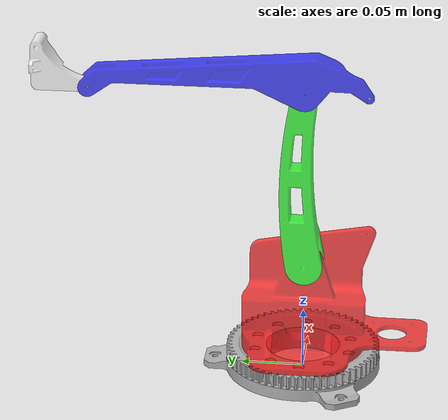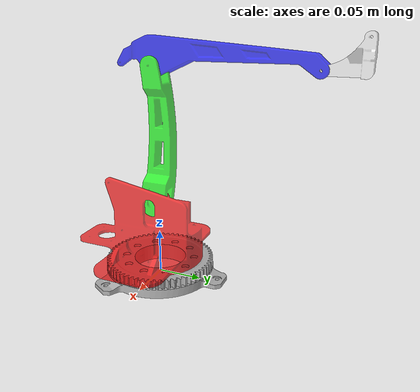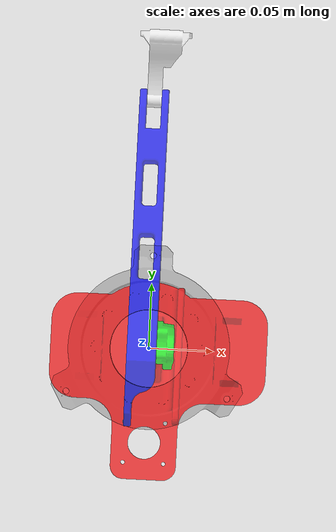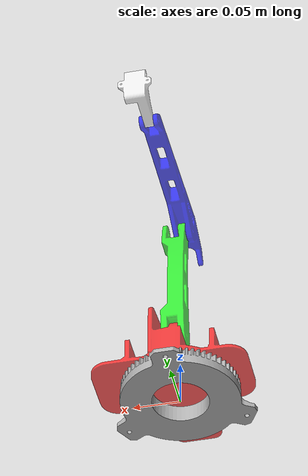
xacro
<?xml version="1.0" ?>
<robot name="zb320" xmlns:xacro="http://www.ros.org/wiki/xacro">

    <xacro:include filename="$(find zb320_description)/urdf/materials.xacro" />
    <xacro:include filename="$(find zb320_description)/urdf/model.trans" />
    <xacro:include filename="$(find zb320_description)/urdf/model.gazebo" />

    <link name="base_link">
        <inertial>
            <origin rpy="0 0 0" xyz="0.0 0.0 0.0"/>
            <mass value="1.4110802987401645"/>
            <inertia ixx="0.001793" ixy="0.0" ixz="0.0" iyy="0.001793" iyz="-0.0" izz="0.003498"/>
        </inertial>
        <visual>
            <origin rpy="0 0 3.14" xyz="0 0 0"/>
            <geometry>
                <mesh filename="package://zb320_description/meshes/base_link.stl" scale="0.001 0.001 0.001"/>
            </geometry>
            <material name="silver"/>
        </visual>
        <collision>
            <origin rpy="0 0 0" xyz="0 0 0"/>
            <geometry>
                <mesh filename="package://zb320_description/meshes/base_link.stl" scale="0.001 0.001 0.001"/>
            </geometry>
        </collision>
    </link>

    <link name="link_1_1">
        <inertial>
            <origin rpy="0 0 0" xyz="0.0 0.0 -0.02"/>
            <mass value="2.152080592427195"/>
            <inertia ixx="0.002479" ixy="-1.4e-05" ixz="0.000171" iyy="0.002425" iyz="-4e-06" izz="0.00328"/>
        </inertial>
        <visual>
            <origin rpy="0 0 3.14" xyz="-0.0 -0.0 -0.02"/>
            <geometry>
                <mesh filename="package://zb320_description/meshes/link_1_1.stl" scale="0.001 0.001 0.001"/>
            </geometry>
            <material name="red"/>
        </visual>
        <collision>
            <origin rpy="0 0 0" xyz="-0.0 -0.0 -0.02"/>
            <geometry>
                <mesh filename="package://zb320_description/meshes/link_1_1.stl" scale="0.001 0.001 0.001"/>
            </geometry>
        </collision>
    </link>

    <link name="link_2_1">
        <inertial>
            <origin rpy="0 0 0" xyz="0.0 0.0 -0.09"/>
            <mass value="0.48368669197035047"/>
            <inertia ixx="0.001168" ixy="1e-06" ixz="-7e-06" iyy="0.001158" iyz="1.1e-05" izz="5.8e-05"/>
        </inertial>
        <visual>
            <origin rpy="0 0 3.14" xyz="-0.0 -0.0 -0.09"/>
            <geometry>
                <mesh filename="package://zb320_description/meshes/link_2_1.stl" scale="0.001 0.001 0.001"/>
            </geometry>
            <material name="green"/>
        </visual>
        <collision>
            <origin rpy="0 0 0" xyz="-0.0 -0.0 -0.09"/>
            <geometry>
                <mesh filename="package://zb320_description/meshes/link_2_1.stl" scale="0.001 0.001 0.001"/>
            </geometry>
        </collision>
    </link>

    <link name="link_3_1">
        <inertial>
            <origin rpy="0 0 0" xyz="0.0 0.0 -0.24"/>
            <mass value="0.5032706604395567"/>
            <inertia ixx="0.001721" ixy="-1.1e-05" ixz="1e-06" iyy="5.3e-05" iyz="-3.7e-05" izz="0.001709"/>
        </inertial>
        <visual>
            <origin rpy="0 0 3.14" xyz="0.0 0.0 -0.24"/>
            <geometry>
                <mesh filename="package://zb320_description/meshes/link_3_1.stl" scale="0.001 0.001 0.001"/>
            </geometry>
            <material name="blue"/>
        </visual>
        <collision>
            <origin rpy="0 0 0" xyz="0.0 0.0 -0.24"/>
            <geometry>
                <mesh filename="package://zb320_description/meshes/link_3_1.stl" scale="0.001 0.001 0.001"/>
            </geometry>
        </collision>
    </link>

    <link name="link_4_1">
        <inertial>
            <origin rpy="0 0 0" xyz="0.0 -0.17 -0.24"/>
            <mass value="0.12489833913220899"/>
            <inertia ixx="3.1e-05" ixy="-3e-06" ixz="2e-06" iyy="1.8e-05" iyz="7e-06" izz="2.3e-05"/>
        </inertial>
        <visual>
            <origin rpy="0 0 3.14" xyz="-0.0 -0.17 -0.24"/>
            <geometry>
                <mesh filename="package://zb320_description/meshes/link_4_1.stl" scale="0.001 0.001 0.001"/>
            </geometry>
            <material name="white"/>
        </visual>
        <collision>
            <origin rpy="0 0 0" xyz="-0.0 -0.17 -0.24"/>
            <geometry>
                <mesh filename="package://zb320_description/meshes/link_4_1.stl" scale="0.001 0.001 0.001"/>
            </geometry>
        </collision>
    </link>

    <joint name="Rev5" type="continuous">
        <origin rpy="0 0 0" xyz="0.0 0.0 0.02"/>
        <parent link="base_link"/>
        <child link="link_1_1"/>
        <axis xyz="0.0 0.0 1.0"/>
    </joint>

    <joint name="Rev6" type="continuous">
        <origin rpy="0 0 0" xyz="0.0 0.0 0.07"/>
        <parent link="link_1_1"/>
        <child link="link_2_1"/>
        <axis xyz="1.0 0.0 0.0"/>
    </joint>

    <joint name="Rev7" type="continuous">
        <origin rpy="0 0 0" xyz="0.0 0.0 0.15"/>
        <parent link="link_2_1"/>
        <child link="link_3_1"/>
        <axis xyz="1.0 0.0 0.0"/>
    </joint>

    <joint name="Rev8" type="continuous">
        <origin rpy="0 0 0" xyz="0.0 0.17 0.0"/>
        <parent link="link_3_1"/>
        <child link="link_4_1"/>
        <axis xyz="1.0 0.0 0.0"/>
    </joint>

</robot>

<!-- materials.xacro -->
<robot name="zb320" xmlns:xacro="http://www.ros.org/wiki/xacro" >

    <material name="silver">
        <color rgba="0.700 0.700 0.700 1.000"/>
    </material>

    <material name="red">
        <color rgba="1.000 0.000 0.000 0.700"/>
    </material>

    <material name="green">
        <color rgba="0.000 1.000 0.000 0.700"/>
    </material>

    <material name="blue">
        <color rgba="0.000 0.000 1.000 0.700"/>
    </material>

    <material name="white">
        <color rgba="1.000 1.000 1.000 0.700"/>
    </material>
</robot>

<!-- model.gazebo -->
<robot name="zb320" xmlns:xacro="http://www.ros.org/wiki/xacro" >

<xacro:property name="body_color" value="Gazebo/Silver" />

<gazebo>
  <plugin filename="libgazebo_ros_control.so" name="control"/>
</gazebo>
<gazebo reference="base_link">
  <material>${body_color}</material>
  <mu1>0.2</mu1>
  <mu2>0.2</mu2>
  <selfCollide>true</selfCollide>
  <gravity>true</gravity>
</gazebo>

<gazebo reference="link_1_1">
  <material>${body_color}</material>
  <mu1>0.2</mu1>
  <mu2>0.2</mu2>
  <selfCollide>true</selfCollide>
</gazebo>

<gazebo reference="link_2_1">
  <material>${body_color}</material>
  <mu1>0.2</mu1>
  <mu2>0.2</mu2>
  <selfCollide>true</selfCollide>
</gazebo>

<gazebo reference="link_3_1">
  <material>${body_color}</material>
  <mu1>0.2</mu1>
  <mu2>0.2</mu2>
  <selfCollide>true</selfCollide>
</gazebo>

<gazebo reference="link_4_1">
  <material>${body_color}</material>
  <mu1>0.2</mu1>
  <mu2>0.2</mu2>
  <selfCollide>true</selfCollide>
</gazebo>

</robot>
